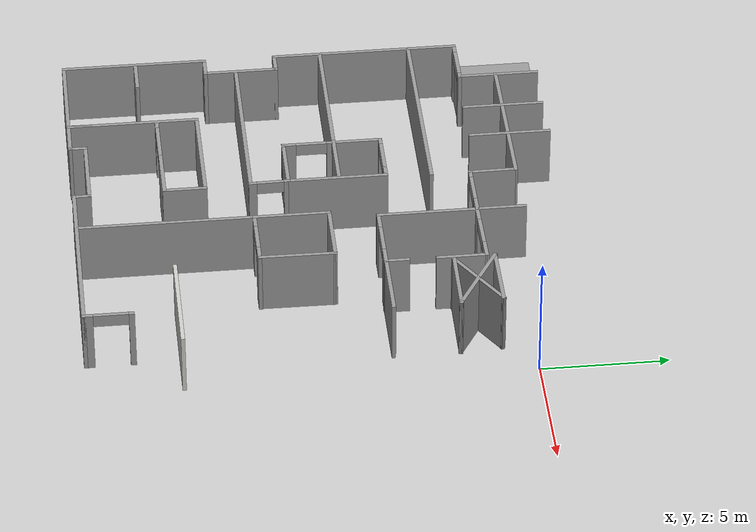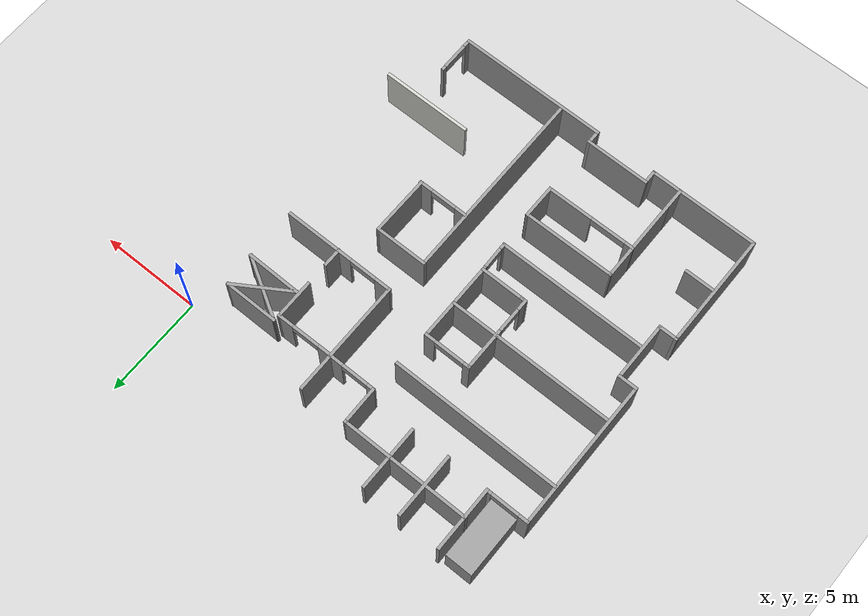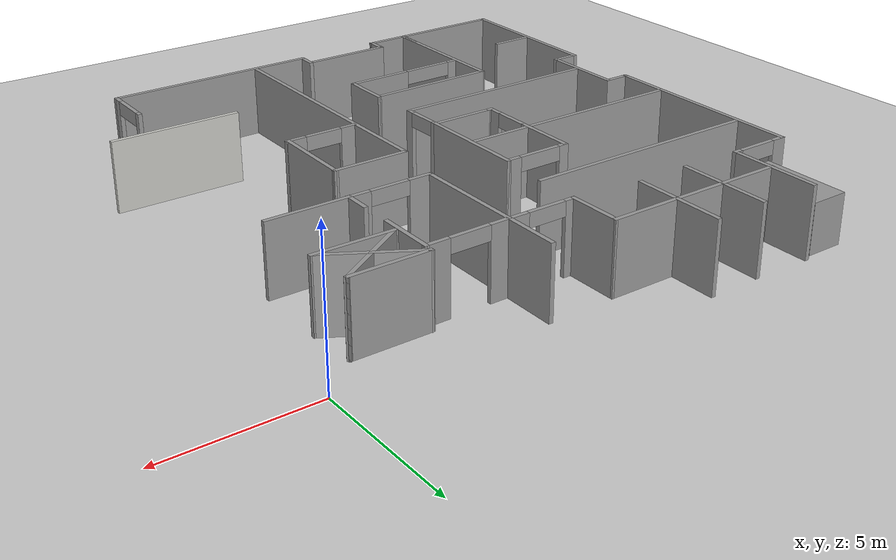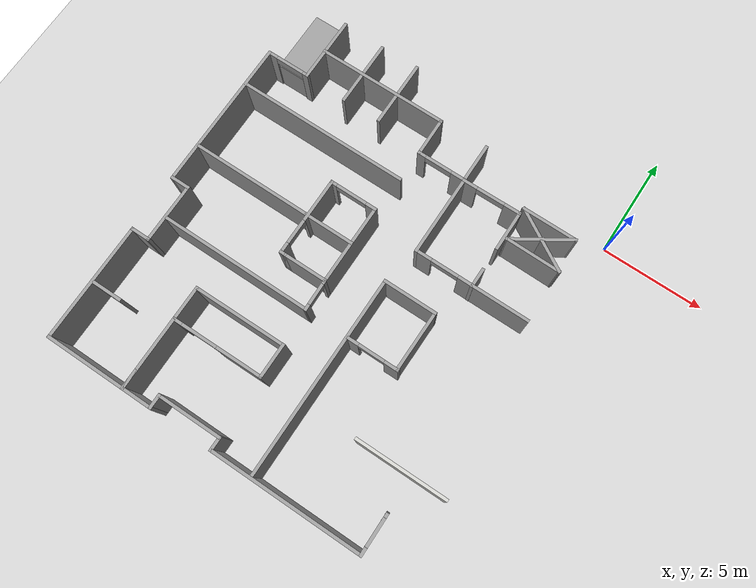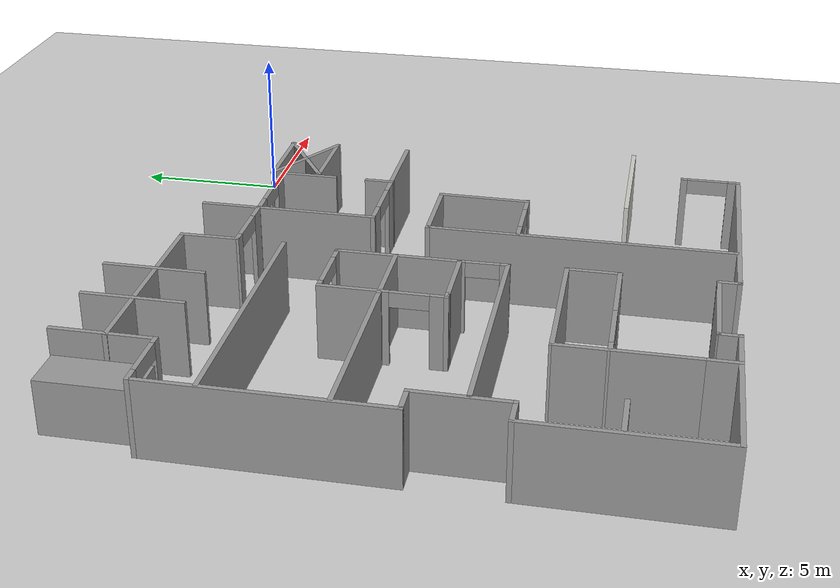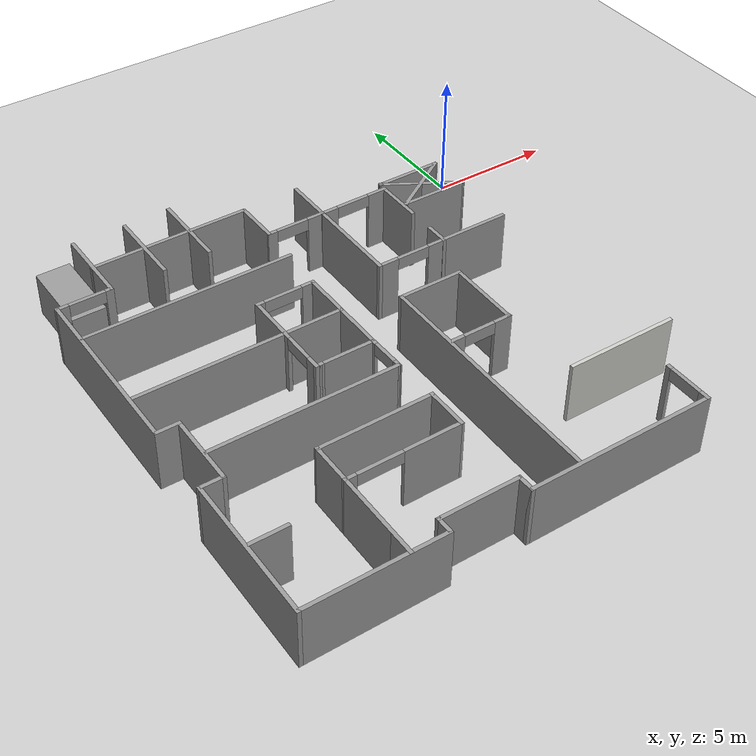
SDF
<sdf version="1.6">
 <world name="default">
  <model name="ground_plane">
   <static>1</static>
   <link name="link">
    <collision name="collision">
     <geometry><plane><normal>0 0 1</normal><size>100 100</size></plane></geometry>
     <surface><friction><ode><mu>100</mu><mu2>50</mu2></ode></friction></surface>
    </collision>
    <visual name="visual">
     <cast_shadows>0</cast_shadows>
     <geometry><plane><normal>0 0 1</normal><size>100 100</size></plane></geometry>
     <material>
      <script><uri>file://media/materials/scripts/gazebo.material</uri><name>Gazebo/Grey</name></script>
     </material>
    </visual>
   </link>
  </model>
  <model name="shopping01">
   <pose>-0.21266 0.4735 0 0 -0 0</pose>
   <link name="Wall_100">
    <collision name="Wall_100_Collision">
     <geometry><box><size>1 0.15 2.5</size></box></geometry>
     <pose>0 0 1.25 0 -0 0</pose>
    </collision>
    <visual name="Wall_100_Visual">
     <pose>0 0 1.25 0 -0 0</pose>
     <geometry><box><size>1 0.15 2.5</size></box></geometry>
     <material>
      <script><uri>file://media/materials/scripts/gazebo.material</uri><name>Gazebo/Grey</name></script>
      <ambient>1 1 1 1</ambient>
     </material>
     <meta><layer>0</layer></meta>
    </visual>
    <pose>-3.82251 -5.48575 0 0 -0 1.5708</pose>
   </link>
   <link name="Wall_112">
    <collision name="Wall_112_Collision">
     <geometry><box><size>2.75 0.15 2.5</size></box></geometry>
     <pose>0 0 1.25 0 -0 0</pose>
    </collision>
    <visual name="Wall_112_Visual">
     <pose>0 0 1.25 0 -0 0</pose>
     <geometry><box><size>2.75 0.15 2.5</size></box></geometry>
     <material>
      <script><uri>file://media/materials/scripts/gazebo.material</uri><name>Gazebo/Grey</name></script>
      <ambient>1 1 1 1</ambient>
     </material>
     <meta><layer>0</layer></meta>
    </visual>
    <pose>-2.47634 -1.71428 0 0 -0 0</pose>
   </link>
   <link name="Wall_205">
    <collision name="Wall_205_Collision">
     <geometry><box><size>8.5 0.15 2.5</size></box></geometry>
     <pose>0 0 1.25 0 -0 0</pose>
    </collision>
    <visual name="Wall_205_Visual">
     <pose>0 0 1.25 0 -0 0</pose>
     <geometry><box><size>8.5 0.15 2.5</size></box></geometry>
     <material>
      <script><uri>file://media/materials/scripts/gazebo.material</uri><name>Gazebo/Grey</name></script>
      <ambient>1 1 1 1</ambient>
     </material>
     <meta><layer>0</layer></meta>
    </visual>
    <pose>-13.2436 -3.55782 0 0 -0 3.14159</pose>
   </link>
   <link name="Wall_207">
    <collision name="Wall_207_Collision">
     <geometry><box><size>6.5 0.15 2.5</size></box></geometry>
     <pose>0 0 1.25 0 -0 0</pose>
    </collision>
    <visual name="Wall_207_Visual">
     <pose>0 0 1.25 0 -0 0</pose>
     <geometry><box><size>6.5 0.15 2.5</size></box></geometry>
     <material>
      <script><uri>file://media/materials/scripts/gazebo.material</uri><name>Gazebo/Grey</name></script>
      <ambient>1 1 1 1</ambient>
     </material>
     <meta><layer>0</layer></meta>
    </visual>
    <pose>-12.2257 -0.227017 0 0 -0 0</pose>
   </link>
   <link name="Wall_211">
    <collision name="Wall_211_Collision">
     <geometry><box><size>1.93704 0.15 2.5</size></box></geometry>
     <pose>0 0 1.25 0 -0 0</pose>
    </collision>
    <visual name="Wall_211_Visual">
     <pose>0 0 1.25 0 -0 0</pose>
     <geometry><box><size>1.93704 0.15 2.5</size></box></geometry>
     <material>
      <script><uri>file://media/materials/scripts/gazebo.material</uri><name>Gazebo/Grey</name></script>
      <ambient>1 1 1 1</ambient>
     </material>
     <meta><layer>0</layer></meta>
    </visual>
    <pose>-9.04205 -1.1205 0 0 -0 -1.56106</pose>
   </link>
   <link name="Wall_212">
    <pose>-7.85836 -2.03137 0 0 -0 0</pose>
    <visual name="Wall_212_Visual_0">
     <pose>-1.04267 0 1.25 0 -0 0</pose>
     <geometry><box><size>0.414663 0.15 2.5</size></box></geometry>
     <material>
      <script><uri>file://media/materials/scripts/gazebo.material</uri><name>Gazebo/Grey</name></script>
      <ambient>1 1 1 1</ambient>
     </material>
     <meta><layer>0</layer></meta>
    </visual>
    <collision name="Wall_212_Collision_0">
     <geometry><box><size>0.414663 0.15 2.5</size></box></geometry>
     <pose>-1.04267 0 1.25 0 -0 0</pose>
    </collision>
    <visual name="Wall_212_Visual_1">
     <pose>0.879134 0 1.25 0 -0 0</pose>
     <geometry><box><size>0.741733 0.15 2.5</size></box></geometry>
     <material>
      <script><uri>file://media/materials/scripts/gazebo.material</uri><name>Gazebo/Grey</name></script>
      <ambient>1 1 1 1</ambient>
     </material>
     <meta><layer>0</layer></meta>
    </visual>
    <collision name="Wall_212_Collision_1">
     <geometry><box><size>0.741733 0.15 2.5</size></box></geometry>
     <pose>0.879134 0 1.25 0 -0 0</pose>
    </collision>
    <visual name="Wall_212_Visual_2">
     <pose>-0.163535 0 2.25 0 -0 0</pose>
     <geometry><box><size>1.3436 0.15 0.5</size></box></geometry>
     <material>
      <script><uri>file://media/materials/scripts/gazebo.material</uri><name>Gazebo/Grey</name></script>
      <ambient>1 1 1 1</ambient>
     </material>
     <meta><layer>0</layer></meta>
    </visual>
    <collision name="Wall_212_Collision_2">
     <geometry><box><size>1.3436 0.15 0.5</size></box></geometry>
     <pose>-0.163535 0 2.25 0 -0 0</pose>
    </collision>
   </link>
   <link name="Wall_214">
    <collision name="Wall_214_Collision">
     <geometry><box><size>2 0.15 2.5</size></box></geometry>
     <pose>0 0 1.25 0 -0 0</pose>
    </collision>
    <visual name="Wall_214_Visual">
     <pose>0 0 1.25 0 -0 0</pose>
     <geometry><box><size>2 0.15 2.5</size></box></geometry>
     <material>
      <script><uri>file://media/materials/scripts/gazebo.material</uri><name>Gazebo/Grey</name></script>
      <ambient>1 1 1 1</ambient>
     </material>
     <meta><layer>0</layer></meta>
    </visual>
    <pose>-6.68336 -1.10637 0 0 -0 1.5708</pose>
   </link>
   <link name="Wall_220">
    <collision name="Wall_220_Collision">
     <geometry><box><size>3.25 0.15 2.5</size></box></geometry>
     <pose>0 0 1.25 0 -0 0</pose>
    </collision>
    <visual name="Wall_220_Visual">
     <pose>0 0 1.25 0 -0 0</pose>
     <geometry><box><size>3.25 0.15 2.5</size></box></geometry>
     <material>
      <script><uri>file://media/materials/scripts/gazebo.material</uri><name>Gazebo/Grey</name></script>
      <ambient>1 1 1 1</ambient>
     </material>
     <meta><layer>0</layer></meta>
    </visual>
    <pose>-13.2902 -0.192861 0 0 -0 1.5708</pose>
   </link>
   <link name="Wall_223">
    <collision name="Wall_223_Collision">
     <geometry><box><size>3.25 0.15 2.5</size></box></geometry>
     <pose>0 0 1.25 0 -0 0</pose>
    </collision>
    <visual name="Wall_223_Visual">
     <pose>0 0 1.25 0 -0 0</pose>
     <geometry><box><size>3.25 0.15 2.5</size></box></geometry>
     <material>
      <script><uri>file://media/materials/scripts/gazebo.material</uri><name>Gazebo/Grey</name></script>
      <ambient>1 1 1 1</ambient>
     </material>
     <meta><layer>0</layer></meta>
    </visual>
    <pose>-11.412 -0.158079 0 0 -0 -1.5708</pose>
   </link>
   <link name="Wall_242">
    <collision name="Wall_242_Collision">
     <geometry><box><size>5.97821 0.15 2.5</size></box></geometry>
     <pose>0 0 1.25 0 -0 0</pose>
    </collision>
    <visual name="Wall_242_Visual">
     <pose>0 0 1.25 0 -0 0</pose>
     <geometry><box><size>5.97821 0.15 2.5</size></box></geometry>
     <material>
      <script><uri>file://media/materials/scripts/gazebo.material</uri><name>Gazebo/Grey</name></script>
      <ambient>1 1 1 1</ambient>
     </material>
     <meta><layer>0</layer></meta>
    </visual>
    <pose>-14.4847 -7.17684 0 0 -0 0</pose>
   </link>
   <link name="Wall_245">
    <collision name="Wall_245_Collision">
     <geometry><box><size>4 0.15 2.5</size></box></geometry>
     <pose>0 0 1.25 0 -0 0</pose>
    </collision>
    <visual name="Wall_245_Visual">
     <pose>0 0 1.25 0 -0 0</pose>
     <geometry><box><size>4 0.15 2.5</size></box></geometry>
     <material>
      <script><uri>file://media/materials/scripts/gazebo.material</uri><name>Gazebo/Grey</name></script>
      <ambient>1 1 1 1</ambient>
     </material>
     <meta><layer>0</layer></meta>
    </visual>
    <pose>-9.19877 -7.25184 0 0 -0 -1.5708</pose>
   </link>
   <link name="Wall_246">
    <collision name="Wall_246_Collision">
     <geometry><box><size>2.25 0.15 2.5</size></box></geometry>
     <pose>0 0 1.25 0 -0 0</pose>
    </collision>
    <visual name="Wall_246_Visual">
     <pose>0 0 1.25 0 -0 0</pose>
     <geometry><box><size>2.25 0.15 2.5</size></box></geometry>
     <material>
      <script><uri>file://media/materials/scripts/gazebo.material</uri><name>Gazebo/Grey</name></script>
      <ambient>1 1 1 1</ambient>
     </material>
     <meta><layer>0</layer></meta>
    </visual>
    <pose>-10.2488 -9.17684 0 0 -0 3.14159</pose>
   </link>
   <link name="Wall_247">
    <collision name="Wall_247_Collision">
     <geometry><box><size>0.25 0.15 2.5</size></box></geometry>
     <pose>0 0 1.25 0 -0 0</pose>
    </collision>
    <visual name="Wall_247_Visual">
     <pose>0 0 1.25 0 -0 0</pose>
     <geometry><box><size>0.25 0.15 2.5</size></box></geometry>
     <material>
      <script><uri>file://media/materials/scripts/gazebo.material</uri><name>Gazebo/Grey</name></script>
      <ambient>1 1 1 1</ambient>
     </material>
     <meta><layer>0</layer></meta>
    </visual>
    <pose>-11.3488 -9.17684 0 0 -0 3.14159</pose>
   </link>
   <link name="Wall_248">
    <collision name="Wall_248_Collision">
     <geometry><box><size>0.25 0.15 2.5</size></box></geometry>
     <pose>0 0 1.25 0 -0 0</pose>
    </collision>
    <visual name="Wall_248_Visual">
     <pose>0 0 1.25 0 -0 0</pose>
     <geometry><box><size>0.25 0.15 2.5</size></box></geometry>
     <material>
      <script><uri>file://media/materials/scripts/gazebo.material</uri><name>Gazebo/Grey</name></script>
      <ambient>1 1 1 1</ambient>
     </material>
     <meta><layer>0</layer></meta>
    </visual>
    <pose>-11.4488 -9.17684 0 0 -0 3.14159</pose>
   </link>
   <link name="Wall_254">
    <pose>-11.4988 -7.25184 0 0 -0 1.5708</pose>
    <visual name="Wall_254_Visual_0">
     <pose>-1.71196 0 1.25 0 -0 0</pose>
     <geometry><box><size>0.576081 0.15 2.5</size></box></geometry>
     <material>
      <script><uri>file://media/materials/scripts/gazebo.material</uri><name>Gazebo/Grey</name></script>
      <ambient>1 1 1 1</ambient>
     </material>
     <meta><layer>0</layer></meta>
    </visual>
    <collision name="Wall_254_Collision_0">
     <geometry><box><size>0.576081 0.15 2.5</size></box></geometry>
     <pose>-1.71196 0 1.25 0 -0 0</pose>
    </collision>
    <visual name="Wall_254_Visual_1">
     <pose>0.897227 0 1.25 0 -0 0</pose>
     <geometry><box><size>2.20554 0.15 2.5</size></box></geometry>
     <material>
      <script><uri>file://media/materials/scripts/gazebo.material</uri><name>Gazebo/Grey</name></script>
      <ambient>1 1 1 1</ambient>
     </material>
     <meta><layer>0</layer></meta>
    </visual>
    <collision name="Wall_254_Collision_1">
     <geometry><box><size>2.20554 0.15 2.5</size></box></geometry>
     <pose>0.897227 0 1.25 0 -0 0</pose>
    </collision>
    <visual name="Wall_254_Visual_2">
     <pose>-0.814732 0 2.25 0 -0 0</pose>
     <geometry><box><size>1.21837 0.15 0.5</size></box></geometry>
     <material>
      <script><uri>file://media/materials/scripts/gazebo.material</uri><name>Gazebo/Grey</name></script>
      <ambient>1 1 1 1</ambient>
     </material>
     <meta><layer>0</layer></meta>
    </visual>
    <collision name="Wall_254_Collision_2">
     <geometry><box><size>1.21837 0.15 0.5</size></box></geometry>
     <pose>-0.814732 0 2.25 0 -0 0</pose>
    </collision>
   </link>
   <link name="Wall_255">
    <pose>-10.3488 -5.32684 0 0 -0 0</pose>
    <visual name="Wall_255_Visual_0">
     <pose>-1.04786 0 1.25 0 -0 0</pose>
     <geometry><box><size>0.354289 0.15 2.5</size></box></geometry>
     <material>
      <script><uri>file://media/materials/scripts/gazebo.material</uri><name>Gazebo/Grey</name></script>
      <ambient>1 1 1 1</ambient>
     </material>
     <meta><layer>0</layer></meta>
    </visual>
    <collision name="Wall_255_Collision_0">
     <geometry><box><size>0.354289 0.15 2.5</size></box></geometry>
     <pose>-1.04786 0 1.25 0 -0 0</pose>
    </collision>
    <visual name="Wall_255_Visual_1">
     <pose>0.945338 0 1.25 0 -0 0</pose>
     <geometry><box><size>0.559325 0.15 2.5</size></box></geometry>
     <material>
      <script><uri>file://media/materials/scripts/gazebo.material</uri><name>Gazebo/Grey</name></script>
      <ambient>1 1 1 1</ambient>
     </material>
     <meta><layer>0</layer></meta>
    </visual>
    <collision name="Wall_255_Collision_1">
     <geometry><box><size>0.559325 0.15 2.5</size></box></geometry>
     <pose>0.945338 0 1.25 0 -0 0</pose>
    </collision>
    <visual name="Wall_255_Visual_2">
     <pose>-0.102518 0 2.25 0 -0 0</pose>
     <geometry><box><size>1.53639 0.15 0.5</size></box></geometry>
     <material>
      <script><uri>file://media/materials/scripts/gazebo.material</uri><name>Gazebo/Grey</name></script>
      <ambient>1 1 1 1</ambient>
     </material>
     <meta><layer>0</layer></meta>
    </visual>
    <collision name="Wall_255_Collision_2">
     <geometry><box><size>1.53639 0.15 0.5</size></box></geometry>
     <pose>-0.102518 0 2.25 0 -0 0</pose>
    </collision>
   </link>
   <link name="Wall_257">
    <collision name="Wall_257_Collision">
     <geometry><box><size>2.5 0.15 2.5</size></box></geometry>
     <pose>0 0 1.25 0 -0 0</pose>
    </collision>
    <visual name="Wall_257_Visual">
     <pose>0 0 1.25 0 -0 0</pose>
     <geometry><box><size>2.5 0.15 2.5</size></box></geometry>
     <material>
      <script><uri>file://media/materials/scripts/gazebo.material</uri><name>Gazebo/Grey</name></script>
      <ambient>1 1 1 1</ambient>
     </material>
     <meta><layer>0</layer></meta>
    </visual>
    <pose>-10.3956 -7.17684 0 0 -0 0</pose>
   </link>
   <link name="Wall_259">
    <collision name="Wall_259_Collision">
     <geometry><box><size>7.5 0.15 2.5</size></box></geometry>
     <pose>0 0 1.25 0 -0 0</pose>
    </collision>
    <visual name="Wall_259_Visual">
     <pose>0 0 1.25 0 -0 0</pose>
     <geometry><box><size>7.5 0.15 2.5</size></box></geometry>
     <material>
      <script><uri>file://media/materials/scripts/gazebo.material</uri><name>Gazebo/Grey</name></script>
      <ambient>1 1 1 1</ambient>
     </material>
     <meta><layer>0</layer></meta>
    </visual>
    <pose>-12.876 -10.6609 0 0 -0 0</pose>
   </link>
   <link name="Wall_260">
    <pose>-9.18269 -9.91886 0 0 -0 1.59248</pose>
    <visual name="Wall_260_Visual_0">
     <pose>-0.654776 0 1.25 0 -0 0</pose>
     <geometry><box><size>0.324819 0.15 2.5</size></box></geometry>
     <material>
      <script><uri>file://media/materials/scripts/gazebo.material</uri><name>Gazebo/Grey</name></script>
      <ambient>1 1 1 1</ambient>
     </material>
     <meta><layer>0</layer></meta>
    </visual>
    <collision name="Wall_260_Collision_0">
     <geometry><box><size>0.324819 0.15 2.5</size></box></geometry>
     <pose>-0.654776 0 1.25 0 -0 0</pose>
    </collision>
    <visual name="Wall_260_Visual_1">
     <pose>0.691077 0 1.25 0 -0 0</pose>
     <geometry><box><size>0.252218 0.15 2.5</size></box></geometry>
     <material>
      <script><uri>file://media/materials/scripts/gazebo.material</uri><name>Gazebo/Grey</name></script>
      <ambient>1 1 1 1</ambient>
     </material>
     <meta><layer>0</layer></meta>
    </visual>
    <collision name="Wall_260_Collision_1">
     <geometry><box><size>0.252218 0.15 2.5</size></box></geometry>
     <pose>0.691077 0 1.25 0 -0 0</pose>
    </collision>
    <visual name="Wall_260_Visual_2">
     <pose>0.036301 0 2.25 0 -0 0</pose>
     <geometry><box><size>1.05733 0.15 0.5</size></box></geometry>
     <material>
      <script><uri>file://media/materials/scripts/gazebo.material</uri><name>Gazebo/Grey</name></script>
      <ambient>1 1 1 1</ambient>
     </material>
     <meta><layer>0</layer></meta>
    </visual>
    <collision name="Wall_260_Collision_2">
     <geometry><box><size>1.05733 0.15 0.5</size></box></geometry>
     <pose>0.036301 0 2.25 0 -0 0</pose>
    </collision>
   </link>
   <link name="Wall_263">
    <collision name="Wall_263_Collision">
     <geometry><box><size>1 0.15 2.5</size></box></geometry>
     <pose>0 0 1.25 0 -0 0</pose>
    </collision>
    <visual name="Wall_263_Visual">
     <pose>0 0 1.25 0 -0 0</pose>
     <geometry><box><size>1 0.15 2.5</size></box></geometry>
     <material>
      <script><uri>file://media/materials/scripts/gazebo.material</uri><name>Gazebo/Grey</name></script>
      <ambient>1 1 1 1</ambient>
     </material>
     <meta><layer>0</layer></meta>
    </visual>
    <pose>-13.5643 -17.1381 0 0 -0 -1.5708</pose>
   </link>
   <link name="Wall_264">
    <collision name="Wall_264_Collision">
     <geometry><box><size>5.25 0.15 2.5</size></box></geometry>
     <pose>0 0 1.25 0 -0 0</pose>
    </collision>
    <visual name="Wall_264_Visual">
     <pose>0 0 1.25 0 -0 0</pose>
     <geometry><box><size>5.25 0.15 2.5</size></box></geometry>
     <material>
      <script><uri>file://media/materials/scripts/gazebo.material</uri><name>Gazebo/Grey</name></script>
      <ambient>1 1 1 1</ambient>
     </material>
     <meta><layer>0</layer></meta>
    </visual>
    <pose>-13.5643 -15.0131 0 0 -0 1.5708</pose>
   </link>
   <link name="Wall_265">
    <collision name="Wall_265_Collision">
     <geometry><box><size>4.61691 0.15 2.5</size></box></geometry>
     <pose>0 0 1.25 0 -0 0</pose>
    </collision>
    <visual name="Wall_265_Visual">
     <pose>0 0 1.25 0 -0 0</pose>
     <geometry><box><size>4.61691 0.15 2.5</size></box></geometry>
     <material>
      <script><uri>file://media/materials/scripts/gazebo.material</uri><name>Gazebo/Grey</name></script>
      <ambient>1 1 1 1</ambient>
     </material>
     <meta><layer>0</layer></meta>
    </visual>
    <pose>-11.3309 -12.4517 0 0 -0 0.005062</pose>
   </link>
   <link name="Wall_266">
    <collision name="Wall_266_Collision">
     <geometry><box><size>1.75 0.15 2.5</size></box></geometry>
     <pose>0 0 1.25 0 -0 0</pose>
    </collision>
    <visual name="Wall_266_Visual">
     <pose>0 0 1.25 0 -0 0</pose>
     <geometry><box><size>1.75 0.15 2.5</size></box></geometry>
     <material>
      <script><uri>file://media/materials/scripts/gazebo.material</uri><name>Gazebo/Grey</name></script>
      <ambient>1 1 1 1</ambient>
     </material>
     <meta><layer>0</layer></meta>
    </visual>
    <pose>-9.07487 -13.2404 0 0 -0 -1.5708</pose>
   </link>
   <link name="Wall_267">
    <pose>-11.3309 -14.0517 0 0 -0 -3.13653</pose>
    <visual name="Wall_267_Visual_0">
     <pose>-1.14196 0 1.25 0 -0 0</pose>
     <geometry><box><size>2.33298 0.15 2.5</size></box></geometry>
     <material>
      <script><uri>file://media/materials/scripts/gazebo.material</uri><name>Gazebo/Grey</name></script>
      <ambient>1 1 1 1</ambient>
     </material>
     <meta><layer>0</layer></meta>
    </visual>
    <collision name="Wall_267_Collision_0">
     <geometry><box><size>2.33298 0.15 2.5</size></box></geometry>
     <pose>-1.14196 0 1.25 0 -0 0</pose>
    </collision>
    <visual name="Wall_267_Visual_1">
     <pose>2.06637 0 1.25 0 -0 0</pose>
     <geometry><box><size>0.484166 0.15 2.5</size></box></geometry>
     <material>
      <script><uri>file://media/materials/scripts/gazebo.material</uri><name>Gazebo/Grey</name></script>
      <ambient>1 1 1 1</ambient>
     </material>
     <meta><layer>0</layer></meta>
    </visual>
    <collision name="Wall_267_Collision_1">
     <geometry><box><size>0.484166 0.15 2.5</size></box></geometry>
     <pose>2.06637 0 1.25 0 -0 0</pose>
    </collision>
    <visual name="Wall_267_Visual_2">
     <pose>0.924409 0 2.25 0 -0 0</pose>
     <geometry><box><size>1.79975 0.15 0.5</size></box></geometry>
     <material>
      <script><uri>file://media/materials/scripts/gazebo.material</uri><name>Gazebo/Grey</name></script>
      <ambient>1 1 1 1</ambient>
     </material>
     <meta><layer>0</layer></meta>
    </visual>
    <collision name="Wall_267_Collision_2">
     <geometry><box><size>1.79975 0.15 0.5</size></box></geometry>
     <pose>0.924409 0 2.25 0 -0 0</pose>
    </collision>
   </link>
   <link name="Wall_269">
    <collision name="Wall_269_Collision">
     <geometry><box><size>9.80039 0.15 2.5</size></box></geometry>
     <pose>0 0 1.25 0 -0 0</pose>
    </collision>
    <visual name="Wall_269_Visual">
     <pose>0 0 1.25 0 -0 0</pose>
     <geometry><box><size>9.80039 0.15 2.5</size></box></geometry>
     <material>
      <script><uri>file://media/materials/scripts/gazebo.material</uri><name>Gazebo/Grey</name></script>
      <ambient>1 1 1 1</ambient>
     </material>
     <meta><layer>0</layer></meta>
    </visual>
    <pose>-7.03853 -12.646 0 0 -0 1.57075</pose>
   </link>
   <link name="Wall_270">
    <collision name="Wall_270_Collision">
     <geometry><box><size>2.68755 0.15 2.5</size></box></geometry>
     <pose>0 0 1.25 0 -0 0</pose>
    </collision>
    <visual name="Wall_270_Visual">
     <pose>0 0 1.25 0 -0 0</pose>
     <geometry><box><size>2.68755 0.15 2.5</size></box></geometry>
     <material>
      <script><uri>file://media/materials/scripts/gazebo.material</uri><name>Gazebo/Grey</name></script>
      <ambient>1 1 1 1</ambient>
     </material>
     <meta><layer>0</layer></meta>
    </visual>
    <pose>-5.76956 -7.78104 0 0 -0 0</pose>
   </link>
   <link name="Wall_271">
    <collision name="Wall_271_Collision">
     <geometry><box><size>3.03674 0.15 2.5</size></box></geometry>
     <pose>0 0 1.25 0 -0 0</pose>
    </collision>
    <visual name="Wall_271_Visual">
     <pose>0 0 1.25 0 -0 0</pose>
     <geometry><box><size>3.03674 0.15 2.5</size></box></geometry>
     <material>
      <script><uri>file://media/materials/scripts/gazebo.material</uri><name>Gazebo/Grey</name></script>
      <ambient>1 1 1 1</ambient>
     </material>
     <meta><layer>0</layer></meta>
    </visual>
    <pose>-4.51394 -9.22436 0 0 -0 -1.57991</pose>
   </link>
   <link name="Wall_272">
    <pose>-5.73014 -10.6811 0 0 -0 -3.14128</pose>
    <visual name="Wall_272_Visual_0">
     <pose>-0.939347 0 1.25 0 -0 0</pose>
     <geometry><box><size>0.729386 0.15 2.5</size></box></geometry>
     <material>
      <script><uri>file://media/materials/scripts/gazebo.material</uri><name>Gazebo/Grey</name></script>
      <ambient>1 1 1 1</ambient>
     </material>
     <meta><layer>0</layer></meta>
    </visual>
    <collision name="Wall_272_Collision_0">
     <geometry><box><size>0.729386 0.15 2.5</size></box></geometry>
     <pose>-0.939347 0 1.25 0 -0 0</pose>
    </collision>
    <visual name="Wall_272_Visual_1">
     <pose>1.01021 0 1.25 0 -0 0</pose>
     <geometry><box><size>0.58767 0.15 2.5</size></box></geometry>
     <material>
      <script><uri>file://media/materials/scripts/gazebo.material</uri><name>Gazebo/Grey</name></script>
      <ambient>1 1 1 1</ambient>
     </material>
     <meta><layer>0</layer></meta>
    </visual>
    <collision name="Wall_272_Collision_1">
     <geometry><box><size>0.58767 0.15 2.5</size></box></geometry>
     <pose>1.01021 0 1.25 0 -0 0</pose>
    </collision>
    <visual name="Wall_272_Visual_2">
     <pose>0.070858 0 2.25 0 -0 0</pose>
     <geometry><box><size>1.29102 0.15 0.5</size></box></geometry>
     <material>
      <script><uri>file://media/materials/scripts/gazebo.material</uri><name>Gazebo/Grey</name></script>
      <ambient>1 1 1 1</ambient>
     </material>
     <meta><layer>0</layer></meta>
    </visual>
    <collision name="Wall_272_Collision_2">
     <geometry><box><size>1.29102 0.15 0.5</size></box></geometry>
     <pose>0.070858 0 2.25 0 -0 0</pose>
    </collision>
   </link>
   <link name="Wall_292">
    <collision name="Wall_292_Collision">
     <geometry><box><size>4.5 0.15 2.5</size></box></geometry>
     <pose>0 0 1.25 0 -0 0</pose>
    </collision>
    <visual name="Wall_292_Visual">
     <pose>0 0 1.25 0 -0 0</pose>
     <geometry><box><size>4.5 0.15 2.5</size></box></geometry>
     <material>
      <script><uri>file://media/materials/scripts/gazebo.material</uri><name>Gazebo/CeilingTiled</name></script>
      <ambient>1 1 1 1</ambient>
     </material>
     <meta><layer>0</layer></meta>
    </visual>
    <pose>-2.16525 -13.9414 0 0 -0 3.14159</pose>
   </link>
   <link name="Wall_298">
    <collision name="Wall_298_Collision">
     <geometry><box><size>1.5 0.15 2.5</size></box></geometry>
     <pose>0 0 1.25 0 -0 0</pose>
    </collision>
    <visual name="Wall_298_Visual">
     <pose>0 0 1.25 0 -0 0</pose>
     <geometry><box><size>1.5 0.15 2.5</size></box></geometry>
     <material>
      <script><uri>file://media/materials/scripts/gazebo.material</uri><name>Gazebo/Grey</name></script>
      <ambient>1 1 1 1</ambient>
     </material>
     <meta><layer>0</layer></meta>
    </visual>
    <pose>-16.685 -14.6748 0 0 -0 0</pose>
   </link>
   <link name="Wall_339">
    <collision name="Wall_339_Collision">
     <geometry><box><size>3.3117 0.15 2.5</size></box></geometry>
     <pose>0 0 1.25 0 -0 0</pose>
    </collision>
    <visual name="Wall_339_Visual">
     <pose>0 0 1.25 0 -0 0</pose>
     <geometry><box><size>3.3117 0.15 2.5</size></box></geometry>
     <material>
      <script><uri>file://media/materials/scripts/gazebo.material</uri><name>Gazebo/Grey</name></script>
      <ambient>1 1 1 1</ambient>
     </material>
     <meta><layer>0</layer></meta>
    </visual>
    <pose>-2.41559 -2.51891 0 0 -0 -0.53401</pose>
   </link>
   <link name="Wall_341">
    <collision name="Wall_341_Collision">
     <geometry><box><size>3.1049 0.15 2.5</size></box></geometry>
     <pose>0 0 1.25 0 -0 0</pose>
    </collision>
    <visual name="Wall_341_Visual">
     <pose>0 0 1.25 0 -0 0</pose>
     <geometry><box><size>3.1049 0.15 2.5</size></box></geometry>
     <material>
      <script><uri>file://media/materials/scripts/gazebo.material</uri><name>Gazebo/Grey</name></script>
      <ambient>1 1 1 1</ambient>
     </material>
     <meta><layer>0</layer></meta>
    </visual>
    <pose>-2.42418 -2.50531 0 0 -0 -2.5766</pose>
   </link>
   <link name="Wall_41">
    <pose>-1.67027 -16.645 0 0 -0 -1.5708</pose>
    <visual name="Wall_41_Visual_0">
     <pose>-0.88955 0 1.25 0 -0 0</pose>
     <geometry><box><size>0.2209 0.15 2.5</size></box></geometry>
     <material>
      <script><uri>file://media/materials/scripts/gazebo.material</uri><name>Gazebo/Grey</name></script>
      <ambient>1 1 1 1</ambient>
     </material>
     <meta><layer>0</layer></meta>
    </visual>
    <collision name="Wall_41_Collision_0">
     <geometry><box><size>0.2209 0.15 2.5</size></box></geometry>
     <pose>-0.88955 0 1.25 0 -0 0</pose>
    </collision>
    <visual name="Wall_41_Visual_1">
     <pose>0.786576 0 1.25 0 -0 0</pose>
     <geometry><box><size>0.426848 0.15 2.5</size></box></geometry>
     <material>
      <script><uri>file://media/materials/scripts/gazebo.material</uri><name>Gazebo/Grey</name></script>
      <ambient>1 1 1 1</ambient>
     </material>
     <meta><layer>0</layer></meta>
    </visual>
    <collision name="Wall_41_Collision_1">
     <geometry><box><size>0.426848 0.15 2.5</size></box></geometry>
     <pose>0.786576 0 1.25 0 -0 0</pose>
    </collision>
    <visual name="Wall_41_Visual_2">
     <pose>-0.102974 0 2.25 0 -0 0</pose>
     <geometry><box><size>1.35225 0.15 0.5</size></box></geometry>
     <material>
      <script><uri>file://media/materials/scripts/gazebo.material</uri><name>Gazebo/Grey</name></script>
      <ambient>1 1 1 1</ambient>
     </material>
     <meta><layer>0</layer></meta>
    </visual>
    <collision name="Wall_41_Collision_2">
     <geometry><box><size>1.35225 0.15 0.5</size></box></geometry>
     <pose>-0.102974 0 2.25 0 -0 0</pose>
    </collision>
   </link>
   <link name="Wall_42">
    <collision name="Wall_42_Collision">
     <geometry><box><size>7.5 0.15 2.5</size></box></geometry>
     <pose>0 0 1.25 0 -0 0</pose>
    </collision>
    <visual name="Wall_42_Visual">
     <pose>0 0 1.25 0 -0 0</pose>
     <geometry><box><size>7.5 0.15 2.5</size></box></geometry>
     <material>
      <script><uri>file://media/materials/scripts/gazebo.material</uri><name>Gazebo/Grey</name></script>
      <ambient>1 1 1 1</ambient>
     </material>
     <meta><layer>0</layer></meta>
    </visual>
    <pose>-5.34527 -17.57 0 0 -0 3.14159</pose>
   </link>
   <link name="Wall_43">
    <collision name="Wall_43_Collision">
     <geometry><box><size>0.75 0.15 2.5</size></box></geometry>
     <pose>0 0 1.25 0 -0 0</pose>
    </collision>
    <visual name="Wall_43_Visual">
     <pose>0 0 1.25 0 -0 0</pose>
     <geometry><box><size>0.75 0.15 2.5</size></box></geometry>
     <material>
      <script><uri>file://media/materials/scripts/gazebo.material</uri><name>Gazebo/Grey</name></script>
      <ambient>1 1 1 1</ambient>
     </material>
     <meta><layer>0</layer></meta>
    </visual>
    <pose>-9.02027 -17.27 0 0 -0 1.5708</pose>
   </link>
   <link name="Wall_44">
    <collision name="Wall_44_Collision">
     <geometry><box><size>3.25 0.15 2.5</size></box></geometry>
     <pose>0 0 1.25 0 -0 0</pose>
    </collision>
    <visual name="Wall_44_Visual">
     <pose>0 0 1.25 0 -0 0</pose>
     <geometry><box><size>3.25 0.15 2.5</size></box></geometry>
     <material>
      <script><uri>file://media/materials/scripts/gazebo.material</uri><name>Gazebo/Grey</name></script>
      <ambient>1 1 1 1</ambient>
     </material>
     <meta><layer>0</layer></meta>
    </visual>
    <pose>-10.5703 -16.97 0 0 -0 3.14159</pose>
   </link>
   <link name="Wall_45">
    <collision name="Wall_45_Collision">
     <geometry><box><size>0.75 0.15 2.5</size></box></geometry>
     <pose>0 0 1.25 0 -0 0</pose>
    </collision>
    <visual name="Wall_45_Visual">
     <pose>0 0 1.25 0 -0 0</pose>
     <geometry><box><size>0.75 0.15 2.5</size></box></geometry>
     <material>
      <script><uri>file://media/materials/scripts/gazebo.material</uri><name>Gazebo/Grey</name></script>
      <ambient>1 1 1 1</ambient>
     </material>
     <meta><layer>0</layer></meta>
    </visual>
    <pose>-12.1203 -17.27 0 0 -0 -1.5708</pose>
   </link>
   <link name="Wall_46">
    <collision name="Wall_46_Collision">
     <geometry><box><size>5.5 0.15 2.5</size></box></geometry>
     <pose>0 0 1.25 0 -0 0</pose>
    </collision>
    <visual name="Wall_46_Visual">
     <pose>0 0 1.25 0 -0 0</pose>
     <geometry><box><size>5.5 0.15 2.5</size></box></geometry>
     <material>
      <script><uri>file://media/materials/scripts/gazebo.material</uri><name>Gazebo/Grey</name></script>
      <ambient>1 1 1 1</ambient>
     </material>
     <meta><layer>0</layer></meta>
    </visual>
    <pose>-14.7953 -17.57 0 0 -0 3.14159</pose>
   </link>
   <link name="Wall_57">
    <collision name="Wall_57_Collision">
     <geometry><box><size>3.25 0.15 2.5</size></box></geometry>
     <pose>0 0 1.25 0 -0 0</pose>
    </collision>
    <visual name="Wall_57_Visual">
     <pose>0 0 1.25 0 -0 0</pose>
     <geometry><box><size>3.25 0.15 2.5</size></box></geometry>
     <material>
      <script><uri>file://media/materials/scripts/gazebo.material</uri><name>Gazebo/Grey</name></script>
      <ambient>1 1 1 1</ambient>
     </material>
     <meta><layer>0</layer></meta>
    </visual>
    <pose>-15.3802 -0.129956 0 0 -0 -1.5708</pose>
   </link>
   <link name="Wall_58">
    <pose>-16.4302 -1.67996 0 0 -0 3.14159</pose>
    <visual name="Wall_58_Visual_0">
     <pose>-0.967523 0 1.25 0 -0 0</pose>
     <geometry><box><size>0.314955 0.15 2.5</size></box></geometry>
     <material>
      <script><uri>file://media/materials/scripts/gazebo.material</uri><name>Gazebo/Grey</name></script>
      <ambient>1 1 1 1</ambient>
     </material>
     <meta><layer>0</layer></meta>
    </visual>
    <collision name="Wall_58_Collision_0">
     <geometry><box><size>0.314955 0.15 2.5</size></box></geometry>
     <pose>-0.967523 0 1.25 0 -0 0</pose>
    </collision>
    <visual name="Wall_58_Visual_1">
     <pose>0.866874 0 1.25 0 -0 0</pose>
     <geometry><box><size>0.516252 0.15 2.5</size></box></geometry>
     <material>
      <script><uri>file://media/materials/scripts/gazebo.material</uri><name>Gazebo/Grey</name></script>
      <ambient>1 1 1 1</ambient>
     </material>
     <meta><layer>0</layer></meta>
    </visual>
    <collision name="Wall_58_Collision_1">
     <geometry><box><size>0.516252 0.15 2.5</size></box></geometry>
     <pose>0.866874 0 1.25 0 -0 0</pose>
    </collision>
    <visual name="Wall_58_Visual_2">
     <pose>-0.100649 0 2.25 0 -0 0</pose>
     <geometry><box><size>1.41879 0.15 0.5</size></box></geometry>
     <material>
      <script><uri>file://media/materials/scripts/gazebo.material</uri><name>Gazebo/Grey</name></script>
      <ambient>1 1 1 1</ambient>
     </material>
     <meta><layer>0</layer></meta>
    </visual>
    <collision name="Wall_58_Collision_2">
     <geometry><box><size>1.41879 0.15 0.5</size></box></geometry>
     <pose>-0.100649 0 2.25 0 -0 0</pose>
    </collision>
   </link>
   <link name="Wall_59">
    <collision name="Wall_59_Collision">
     <geometry><box><size>7.5 0.15 2.5</size></box></geometry>
     <pose>0 0 1.25 0 -0 0</pose>
    </collision>
    <visual name="Wall_59_Visual">
     <pose>0 0 1.25 0 -0 0</pose>
     <geometry><box><size>7.5 0.15 2.5</size></box></geometry>
     <material>
      <script><uri>file://media/materials/scripts/gazebo.material</uri><name>Gazebo/Grey</name></script>
      <ambient>1 1 1 1</ambient>
     </material>
     <meta><layer>0</layer></meta>
    </visual>
    <pose>-17.4802 -5.35496 0 0 -0 -1.5708</pose>
   </link>
   <link name="Wall_60">
    <collision name="Wall_60_Collision">
     <geometry><box><size>1 0.15 2.5</size></box></geometry>
     <pose>0 0 1.25 0 -0 0</pose>
    </collision>
    <visual name="Wall_60_Visual">
     <pose>0 0 1.25 0 -0 0</pose>
     <geometry><box><size>1 0.15 2.5</size></box></geometry>
     <material>
      <script><uri>file://media/materials/scripts/gazebo.material</uri><name>Gazebo/Grey</name></script>
      <ambient>1 1 1 1</ambient>
     </material>
     <meta><layer>0</layer></meta>
    </visual>
    <pose>-17.0552 -9.02996 0 0 -0 0</pose>
   </link>
   <link name="Wall_61">
    <collision name="Wall_61_Collision">
     <geometry><box><size>3 0.15 2.5</size></box></geometry>
     <pose>0 0 1.25 0 -0 0</pose>
    </collision>
    <visual name="Wall_61_Visual">
     <pose>0 0 1.25 0 -0 0</pose>
     <geometry><box><size>3 0.15 2.5</size></box></geometry>
     <material>
      <script><uri>file://media/materials/scripts/gazebo.material</uri><name>Gazebo/Grey</name></script>
      <ambient>1 1 1 1</ambient>
     </material>
     <meta><layer>0</layer></meta>
    </visual>
    <pose>-16.6302 -10.455 0 0 -0 -1.5708</pose>
   </link>
   <link name="Wall_62">
    <collision name="Wall_62_Collision">
     <geometry><box><size>1 0.15 2.5</size></box></geometry>
     <pose>0 0 1.25 0 -0 0</pose>
    </collision>
    <visual name="Wall_62_Visual">
     <pose>0 0 1.25 0 -0 0</pose>
     <geometry><box><size>1 0.15 2.5</size></box></geometry>
     <material>
      <script><uri>file://media/materials/scripts/gazebo.material</uri><name>Gazebo/Grey</name></script>
      <ambient>1 1 1 1</ambient>
     </material>
     <meta><layer>0</layer></meta>
    </visual>
    <pose>-17.055 -11.88 0 0 -0 -3.14149</pose>
   </link>
   <link name="Wall_64">
    <collision name="Wall_64_Collision">
     <geometry><box><size>5.84 0.15 2.5</size></box></geometry>
     <pose>0 0 1.25 0 -0 0</pose>
    </collision>
    <visual name="Wall_64_Visual">
     <pose>0 0 1.25 0 -0 0</pose>
     <geometry><box><size>5.84 0.15 2.5</size></box></geometry>
     <material>
      <script><uri>file://media/materials/scripts/gazebo.material</uri><name>Gazebo/Grey</name></script>
      <ambient>1 1 1 1</ambient>
     </material>
     <meta><layer>0</layer></meta>
    </visual>
    <pose>-17.4798 -14.725 0 0 -0 -1.5708</pose>
   </link>
   <link name="Wall_92">
    <collision name="Wall_92_Collision">
     <geometry><box><size>2.76734 0.15 2.5</size></box></geometry>
     <pose>0 0 1.25 0 -0 0</pose>
    </collision>
    <visual name="Wall_92_Visual">
     <pose>0 0 1.25 0 -0 0</pose>
     <geometry><box><size>2.76734 0.15 2.5</size></box></geometry>
     <material>
      <script><uri>file://media/materials/scripts/gazebo.material</uri><name>Gazebo/Grey</name></script>
      <ambient>1 1 1 1</ambient>
     </material>
     <meta><layer>0</layer></meta>
    </visual>
    <pose>-2.36343 -3.30995 0 0 -0 3.1312</pose>
   </link>
   <link name="Wall_95">
    <pose>-3.87203 -5.89635 0 0 -0 3.14159</pose>
    <visual name="Wall_95_Visual_0">
     <pose>-1.10457 0 1.25 0 -0 0</pose>
     <geometry><box><size>3.54086 0.15 2.5</size></box></geometry>
     <material>
      <script><uri>file://media/materials/scripts/gazebo.material</uri><name>Gazebo/Grey</name></script>
      <ambient>1 1 1 1</ambient>
     </material>
     <meta><layer>0</layer></meta>
    </visual>
    <collision name="Wall_95_Collision_0">
     <geometry><box><size>3.54086 0.15 2.5</size></box></geometry>
     <pose>-1.10457 0 1.25 0 -0 0</pose>
    </collision>
    <visual name="Wall_95_Visual_1">
     <pose>2.44784 0 1.25 0 -0 0</pose>
     <geometry><box><size>0.854322 0.15 2.5</size></box></geometry>
     <material>
      <script><uri>file://media/materials/scripts/gazebo.material</uri><name>Gazebo/Grey</name></script>
      <ambient>1 1 1 1</ambient>
     </material>
     <meta><layer>0</layer></meta>
    </visual>
    <collision name="Wall_95_Collision_1">
     <geometry><box><size>0.854322 0.15 2.5</size></box></geometry>
     <pose>2.44784 0 1.25 0 -0 0</pose>
    </collision>
    <visual name="Wall_95_Visual_2">
     <pose>1.34327 0 2.25 0 -0 0</pose>
     <geometry><box><size>1.35482 0.15 0.5</size></box></geometry>
     <material>
      <script><uri>file://media/materials/scripts/gazebo.material</uri><name>Gazebo/Grey</name></script>
      <ambient>1 1 1 1</ambient>
     </material>
     <meta><layer>0</layer></meta>
    </visual>
    <collision name="Wall_95_Collision_2">
     <geometry><box><size>1.35482 0.15 0.5</size></box></geometry>
     <pose>1.34327 0 2.25 0 -0 0</pose>
    </collision>
   </link>
   <link name="Wall_96">
    <collision name="Wall_96_Collision">
     <geometry><box><size>4 0.15 2.5</size></box></geometry>
     <pose>0 0 1.25 0 -0 0</pose>
    </collision>
    <visual name="Wall_96_Visual">
     <pose>0 0 1.25 0 -0 0</pose>
     <geometry><box><size>4 0.15 2.5</size></box></geometry>
     <material>
      <script><uri>file://media/materials/scripts/gazebo.material</uri><name>Gazebo/Grey</name></script>
      <ambient>1 1 1 1</ambient>
     </material>
     <meta><layer>0</layer></meta>
    </visual>
    <pose>-6.67203 -3.97135 0 0 -0 1.5708</pose>
   </link>
   <link name="Wall_97">
    <pose>-5.24801 -2.03109 0 0 -0 0.01072</pose>
    <visual name="Wall_97_Visual_0">
     <pose>-1.12465 0 1.25 0 -0 0</pose>
     <geometry><box><size>0.748897 0.15 2.5</size></box></geometry>
     <material>
      <script><uri>file://media/materials/scripts/gazebo.material</uri><name>Gazebo/Grey</name></script>
      <ambient>1 1 1 1</ambient>
     </material>
     <meta><layer>0</layer></meta>
    </visual>
    <collision name="Wall_97_Collision_0">
     <geometry><box><size>0.748897 0.15 2.5</size></box></geometry>
     <pose>-1.12465 0 1.25 0 -0 0</pose>
    </collision>
    <visual name="Wall_97_Visual_1">
     <pose>1.07151 0 1.25 0 -0 0</pose>
     <geometry><box><size>0.85518 0.15 2.5</size></box></geometry>
     <material>
      <script><uri>file://media/materials/scripts/gazebo.material</uri><name>Gazebo/Grey</name></script>
      <ambient>1 1 1 1</ambient>
     </material>
     <meta><layer>0</layer></meta>
    </visual>
    <collision name="Wall_97_Collision_1">
     <geometry><box><size>0.85518 0.15 2.5</size></box></geometry>
     <pose>1.07151 0 1.25 0 -0 0</pose>
    </collision>
    <visual name="Wall_97_Visual_2">
     <pose>-0.053142 0 2.25 0 -0 0</pose>
     <geometry><box><size>1.39413 0.15 0.5</size></box></geometry>
     <material>
      <script><uri>file://media/materials/scripts/gazebo.material</uri><name>Gazebo/Grey</name></script>
      <ambient>1 1 1 1</ambient>
     </material>
     <meta><layer>0</layer></meta>
    </visual>
    <collision name="Wall_97_Collision_2">
     <geometry><box><size>1.39413 0.15 0.5</size></box></geometry>
     <pose>-0.053142 0 2.25 0 -0 0</pose>
    </collision>
   </link>
   <link name="Wall_98">
    <collision name="Wall_98_Collision">
     <geometry><box><size>2.03053 0.15 2.5</size></box></geometry>
     <pose>0 0 1.25 0 -0 0</pose>
    </collision>
    <visual name="Wall_98_Visual">
     <pose>0 0 1.25 0 -0 0</pose>
     <geometry><box><size>2.03053 0.15 2.5</size></box></geometry>
     <material>
      <script><uri>file://media/materials/scripts/gazebo.material</uri><name>Gazebo/Grey</name></script>
      <ambient>1 1 1 1</ambient>
     </material>
     <meta><layer>0</layer></meta>
    </visual>
    <pose>-3.82301 -2.95608 0 0 -0 -1.56976</pose>
   </link>
   <static>1</static>
  </model>
  <model name="unit_box_clone_0">
   <pose>-16.5543 0.289438 0.886125 0 -1e-06 0.000786</pose>
   <link name="link">
    <inertial>
     <mass>1</mass>
     <inertia>
      <ixx>0.166667</ixx>
      <ixy>0</ixy>
      <ixz>0</ixz>
      <iyy>0.166667</iyy>
      <iyz>0</iyz>
      <izz>0.166667</izz>
     </inertia>
    </inertial>
    <collision name="collision"><geometry><box><size>1.35542 3.05045 1.77225</size></box></geometry></collision>
    <visual name="visual">
     <geometry><box><size>1.35542 3.05045 1.77225</size></box></geometry>
     <material>
      <script><name>Gazebo/Grey</name><uri>file://media/materials/scripts/gazebo.material</uri></script>
     </material>
    </visual>
   </link>
  </model>
 </world>
</sdf>
